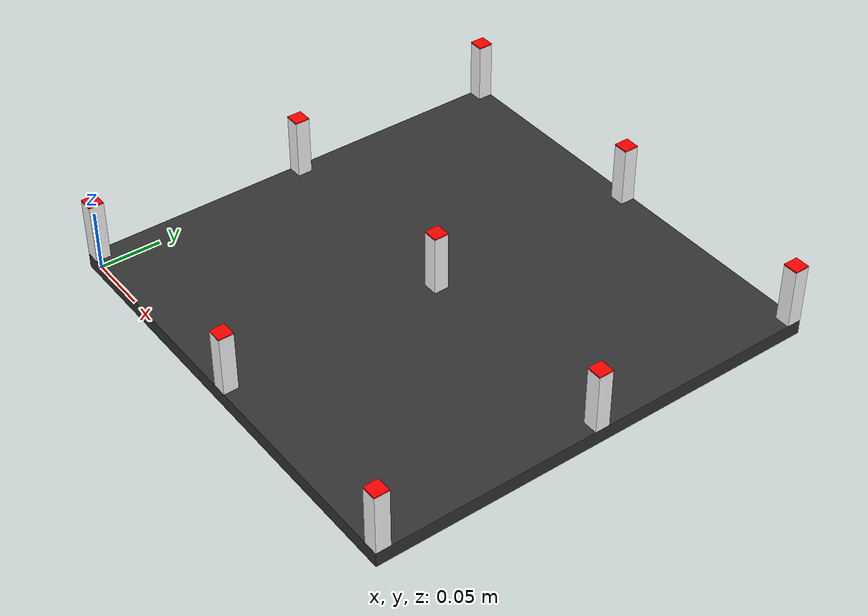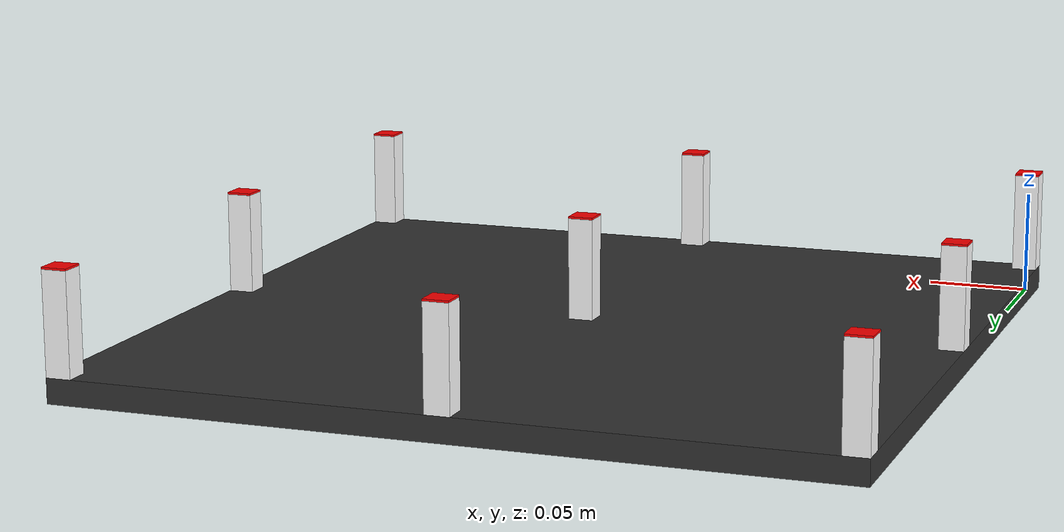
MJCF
<mujoco model="maze">
    <worldbody>
        <!--ベース板-->
        <body name="base_plate" pos="0.18 0.18 0.006">
        <geom type="box" mass="0.1" size="0.186 0.186 0.006" rgba="0.2 0.2 0.2 1" friction="0.0 0.0 0.0"/>
        </body>

        <!-- Column 1-->
        <body pos="0.0 0.0 0.037">
            <body pos="0 0 -0.0005">
                <geom type="box" mass="0.01" size="0.006 0.006 0.0245" rgba="1 1 1 1"/>
            </body>
            <!--柱上赤蓋-->
            <body pos="0 0 0.0245">
                <geom type="box" mass="0.01" size="0.006 0.006 0.0005" rgba="1 0 0 1"/>
            </body>
        </body>

        <!-- Column 2-->
        <body pos="0.18 0.0 0.037">
            <body pos="0 0 -0.0005">
                <geom type="box" mass="0.01" size="0.006 0.006 0.0245" rgba="1 1 1 1"/>
            </body>
            <!--柱上赤蓋-->
            <body pos="0 0 0.0245">
                <geom type="box" mass="0.01" size="0.006 0.006 0.0005" rgba="1 0 0 1"/>
            </body>
        </body>

        <!-- Column 3-->
        <body pos="0.36 0.0 0.037">
            <body pos="0 0 -0.0005">
                <geom type="box" mass="0.01" size="0.006 0.006 0.0245" rgba="1 1 1 1"/>
            </body>
            <!--柱上赤蓋-->
            <body pos="0 0 0.0245">
                <geom type="box" mass="0.01" size="0.006 0.006 0.0005" rgba="1 0 0 1"/>
            </body>
        </body>

        <!-- Column 4-->
        <body pos="0.0 0.18 0.037">
            <body pos="0 0 -0.0005">
                <geom type="box" mass="0.01" size="0.006 0.006 0.0245" rgba="1 1 1 1"/>
            </body>
            <!--柱上赤蓋-->
            <body pos="0 0 0.0245">
                <geom type="box" mass="0.01" size="0.006 0.006 0.0005" rgba="1 0 0 1"/>
            </body>
        </body>

        <!-- Column 5-->
        <body pos="0.18 0.18 0.037">
            <body pos="0 0 -0.0005">
                <geom type="box" mass="0.01" size="0.006 0.006 0.0245" rgba="1 1 1 1"/>
            </body>
            <!--柱上赤蓋-->
            <body pos="0 0 0.0245">
                <geom type="box" mass="0.01" size="0.006 0.006 0.0005" rgba="1 0 0 1"/>
            </body>
        </body>

        <!-- Column 6-->
        <body pos="0.36 0.18 0.037">
            <body pos="0 0 -0.0005">
                <geom type="box" mass="0.01" size="0.006 0.006 0.0245" rgba="1 1 1 1"/>
            </body>
            <!--柱上赤蓋-->
            <body pos="0 0 0.0245">
                <geom type="box" mass="0.01" size="0.006 0.006 0.0005" rgba="1 0 0 1"/>
            </body>
        </body>

        <!-- Column 7-->
        <body pos="0.0 0.36 0.037">
            <body pos="0 0 -0.0005">
                <geom type="box" mass="0.01" size="0.006 0.006 0.0245" rgba="1 1 1 1"/>
            </body>
            <!--柱上赤蓋-->
            <body pos="0 0 0.0245">
                <geom type="box" mass="0.01" size="0.006 0.006 0.0005" rgba="1 0 0 1"/>
            </body>
        </body>

        <!-- Column 8-->
        <body pos="0.18 0.36 0.037">
            <body pos="0 0 -0.0005">
                <geom type="box" mass="0.01" size="0.006 0.006 0.0245" rgba="1 1 1 1"/>
            </body>
            <!--柱上赤蓋-->
            <body pos="0 0 0.0245">
                <geom type="box" mass="0.01" size="0.006 0.006 0.0005" rgba="1 0 0 1"/>
            </body>
        </body>

        <!-- Column 9-->
        <body pos="0.36 0.36 0.037">
            <body pos="0 0 -0.0005">
                <geom type="box" mass="0.01" size="0.006 0.006 0.0245" rgba="1 1 1 1"/>
            </body>
            <!--柱上赤蓋-->
            <body pos="0 0 0.0245">
                <geom type="box" mass="0.01" size="0.006 0.006 0.0005" rgba="1 0 0 1"/>
            </body>
        </body>
    </worldbody>
</mujoco>
